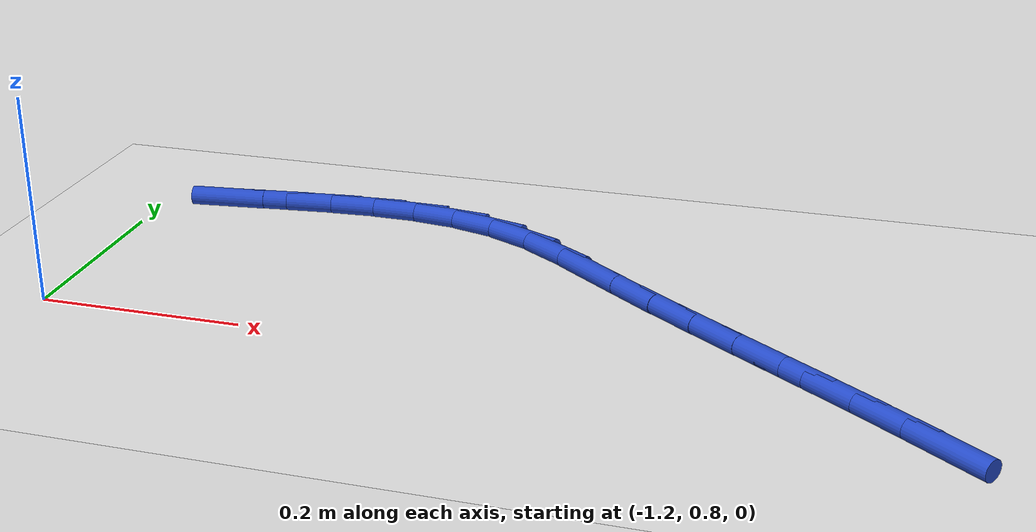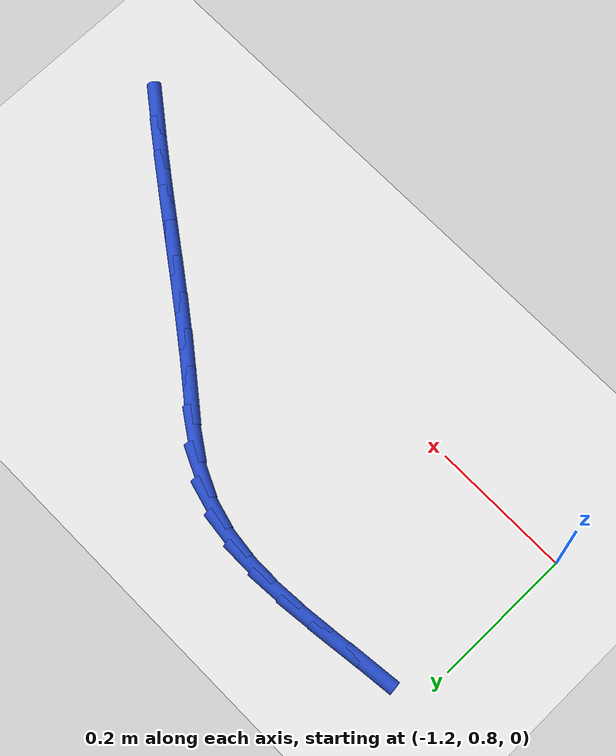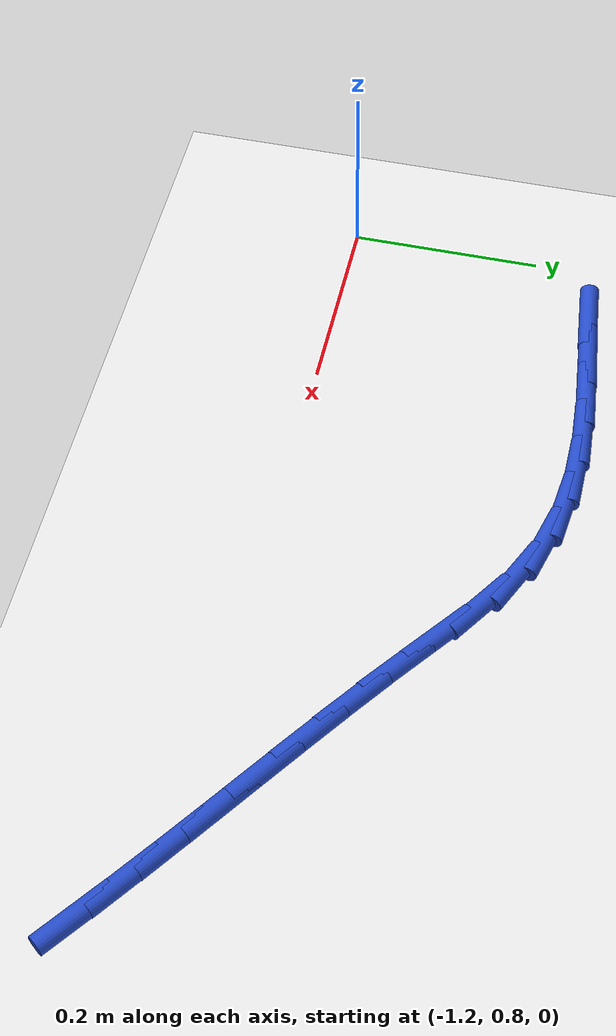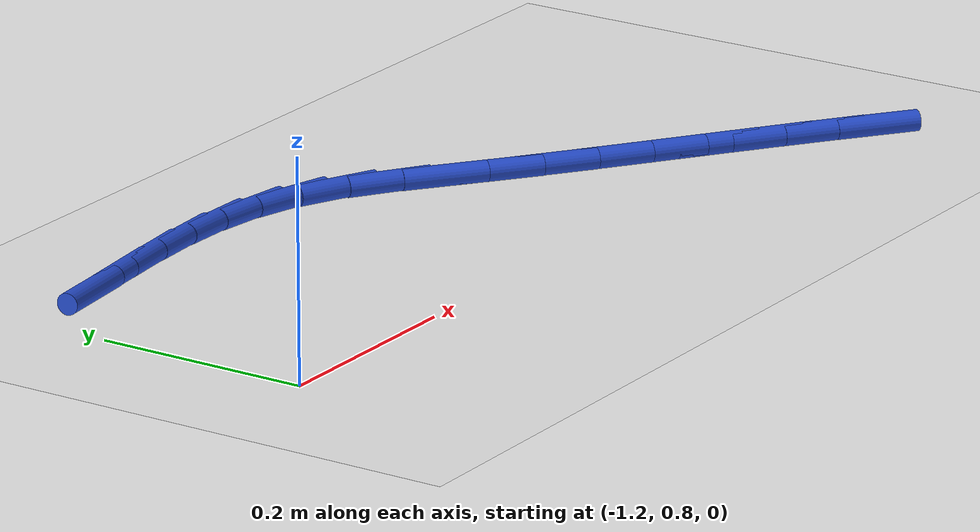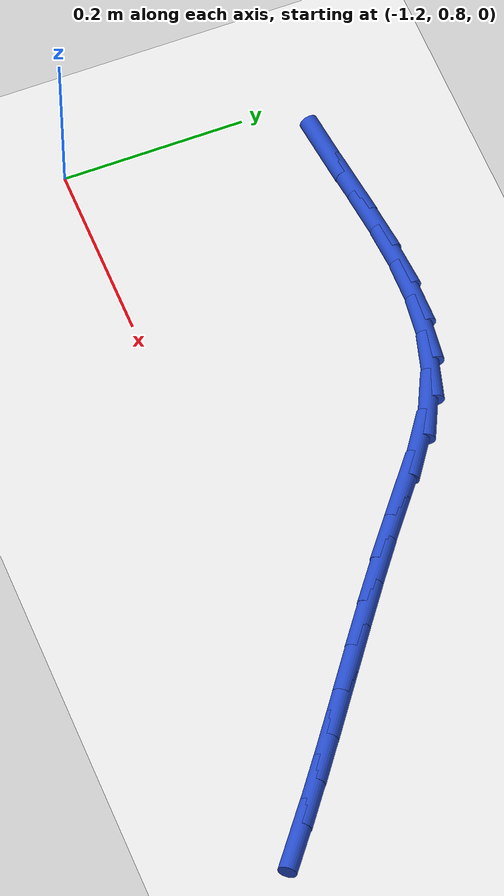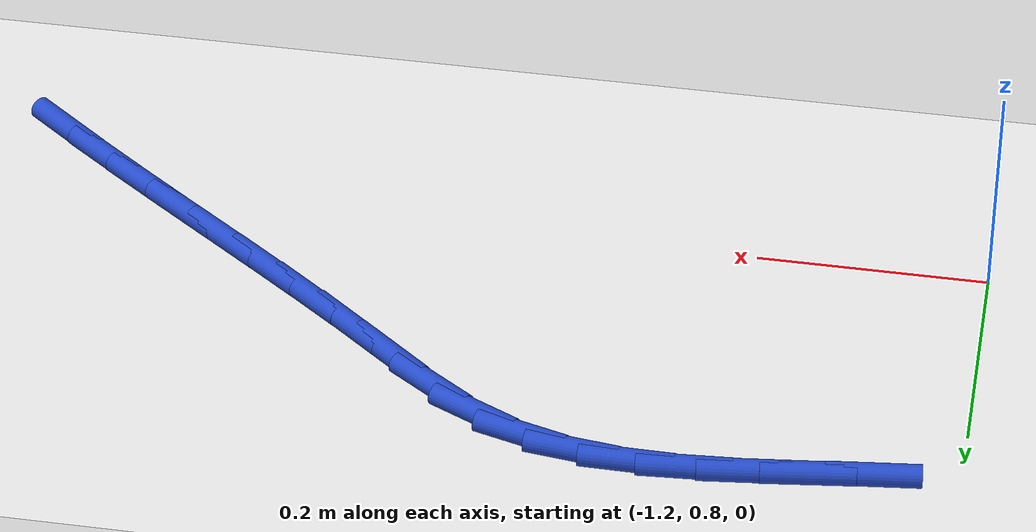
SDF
<sdf version="1.6">
 <world name="default">
  <model name="ground_plane">
   <static>1</static>
   <link name="link">
    <collision name="collision">
     <geometry><plane><normal>0 0 1</normal><size>100 100</size></plane></geometry>
     <surface><friction><ode><mu>100</mu><mu2>50</mu2></ode></friction></surface>
    </collision>
    <visual name="visual">
     <cast_shadows>0</cast_shadows>
     <geometry><plane><normal>0 0 1</normal><size>100 100</size></plane></geometry>
     <material>
      <script><uri>file://media/materials/scripts/gazebo.material</uri><name>Gazebo/WhiteGlow</name></script>
     </material>
    </visual>
   </link>
  </model>
  <model name="line">
   <link name="link_17">
    <pose>-0.37418684795999163 0.7340761775076537 0.01 0 1.57 -0.6552881118612386</pose>
    <collision name="collision">
     <geometry><cylinder><radius>0.01</radius><length>0.08</length></cylinder></geometry>
    </collision>
    <visual name="visual">
     <material>
      <script><name>Gazebo/Blue</name><uri>file://media/materials/scripts/gazebo.material</uri></script>
     </material>
     <geometry><cylinder><radius>0.01</radius><length>0.08</length></cylinder></geometry>
    </visual>
   </link>
   <link name="link_18">
    <pose>-0.4151045970676317 0.7655248362634419 0.01 0 1.57 -0.6391896097318547</pose>
    <collision name="collision">
     <geometry><cylinder><radius>0.01</radius><length>0.08</length></cylinder></geometry>
    </collision>
    <visual name="visual">
     <material>
      <script><name>Gazebo/Blue</name><uri>file://media/materials/scripts/gazebo.material</uri></script>
     </material>
     <geometry><cylinder><radius>0.01</radius><length>0.08</length></cylinder></geometry>
    </visual>
   </link>
   <link name="link_19">
    <pose>-0.4568073008976322 0.7965218286047822 0.01 0 1.57 -0.6290031770769404</pose>
    <collision name="collision">
     <geometry><cylinder><radius>0.01</radius><length>0.08</length></cylinder></geometry>
    </collision>
    <visual name="visual">
     <material>
      <script><name>Gazebo/Blue</name><uri>file://media/materials/scripts/gazebo.material</uri></script>
     </material>
     <geometry><cylinder><radius>0.01</radius><length>0.08</length></cylinder></geometry>
    </visual>
   </link>
   <link name="link_20">
    <pose>-0.4990520215523381 0.8272586266876789 0.01 0 1.57 -0.6245884747594281</pose>
    <collision name="collision">
     <geometry><cylinder><radius>0.01</radius><length>0.08</length></cylinder></geometry>
    </collision>
    <visual name="visual">
     <material>
      <script><name>Gazebo/Blue</name><uri>file://media/materials/scripts/gazebo.material</uri></script>
     </material>
     <geometry><cylinder><radius>0.01</radius><length>0.08</length></cylinder></geometry>
    </visual>
   </link>
   <link name="link_21">
    <pose>-0.5415958211340943 0.8579267026681368 0.01 0 1.57 -0.6258583143683455</pose>
    <collision name="collision">
     <geometry><cylinder><radius>0.01</radius><length>0.08</length></cylinder></geometry>
    </collision>
    <visual name="visual">
     <material>
      <script><name>Gazebo/Blue</name><uri>file://media/materials/scripts/gazebo.material</uri></script>
     </material>
     <geometry><cylinder><radius>0.01</radius><length>0.08</length></cylinder></geometry>
    </visual>
   </link>
   <link name="link_22">
    <pose>-0.5841957617452458 0.8887175287021603 0.01 0 1.57 -0.6327806665517949</pose>
    <collision name="collision">
     <geometry><cylinder><radius>0.01</radius><length>0.08</length></cylinder></geometry>
    </collision>
    <visual name="visual">
     <material>
      <script><name>Gazebo/Blue</name><uri>file://media/materials/scripts/gazebo.material</uri></script>
     </material>
     <geometry><cylinder><radius>0.01</radius><length>0.08</length></cylinder></geometry>
    </visual>
   </link>
   <link name="link_23">
    <pose>-0.6266089054881376 0.9198225769457542 0.01 0 1.57 -0.6453763254640165</pose>
    <collision name="collision">
     <geometry><cylinder><radius>0.01</radius><length>0.08</length></cylinder></geometry>
    </collision>
    <visual name="visual">
     <material>
      <script><name>Gazebo/Blue</name><uri>file://media/materials/scripts/gazebo.material</uri></script>
     </material>
     <geometry><cylinder><radius>0.01</radius><length>0.08</length></cylinder></geometry>
    </visual>
   </link>
   <link name="link_24">
    <pose>-0.6685923144651147 0.9514333195549228 0.01 0 1.57 -0.6636748674826974</pose>
    <collision name="collision">
     <geometry><cylinder><radius>0.01</radius><length>0.08</length></cylinder></geometry>
    </collision>
    <visual name="visual">
     <material>
      <script><name>Gazebo/Blue</name><uri>file://media/materials/scripts/gazebo.material</uri></script>
     </material>
     <geometry><cylinder><radius>0.01</radius><length>0.08</length></cylinder></geometry>
    </visual>
   </link>
   <link name="link_25">
    <pose>-0.7099036691464841 0.9837392188281807 0.01 0 1.57 -0.6671351583942463</pose>
    <collision name="collision">
     <geometry><cylinder><radius>0.01</radius><length>0.08</length></cylinder></geometry>
    </collision>
    <visual name="visual">
     <material>
      <script><name>Gazebo/Blue</name><uri>file://media/materials/scripts/gazebo.material</uri></script>
     </material>
     <geometry><cylinder><radius>0.01</radius><length>0.08</length></cylinder></geometry>
    </visual>
   </link>
   <link name="link_26">
    <pose>-0.7506408762146539 1.0158239129545878 0.01 0 1.57 -0.5974731530288941</pose>
    <collision name="collision">
     <geometry><cylinder><radius>0.01</radius><length>0.08</length></cylinder></geometry>
    </collision>
    <visual name="visual">
     <material>
      <script><name>Gazebo/Blue</name><uri>file://media/materials/scripts/gazebo.material</uri></script>
     </material>
     <geometry><cylinder><radius>0.01</radius><length>0.08</length></cylinder></geometry>
    </visual>
   </link>
   <link name="link_27">
    <pose>-0.7918055526931449 1.0438337453245659 0.01 0 1.57 -0.44142695521278325</pose>
    <collision name="collision">
     <geometry><cylinder><radius>0.01</radius><length>0.08</length></cylinder></geometry>
    </collision>
    <visual name="visual">
     <material>
      <script><name>Gazebo/Blue</name><uri>file://media/materials/scripts/gazebo.material</uri></script>
     </material>
     <geometry><cylinder><radius>0.01</radius><length>0.08</length></cylinder></geometry>
    </visual>
   </link>
   <link name="link_28">
    <pose>-0.8344394997565895 1.0639793476541815 0.01 0 1.57 -0.26747660866811307</pose>
    <collision name="collision">
     <geometry><cylinder><radius>0.01</radius><length>0.08</length></cylinder></geometry>
    </collision>
    <visual name="visual">
     <material>
      <script><name>Gazebo/Blue</name><uri>file://media/materials/scripts/gazebo.material</uri></script>
     </material>
     <geometry><cylinder><radius>0.01</radius><length>0.08</length></cylinder></geometry>
    </visual>
   </link>
   <link name="link_29">
    <pose>-0.8788560352390451 1.076151404071915 0.01 0 1.57 -0.12075955600595661</pose>
    <collision name="collision">
     <geometry><cylinder><radius>0.01</radius><length>0.08</length></cylinder></geometry>
    </collision>
    <visual name="visual">
     <material>
      <script><name>Gazebo/Blue</name><uri>file://media/materials/scripts/gazebo.material</uri></script>
     </material>
     <geometry><cylinder><radius>0.01</radius><length>0.08</length></cylinder></geometry>
    </visual>
   </link>
   <link name="link_30">
    <pose>-0.9250678609733516 1.0817592094676391 0.01 0 1.57 -0.00952965241427522</pose>
    <collision name="collision">
     <geometry><cylinder><radius>0.01</radius><length>0.08</length></cylinder></geometry>
    </collision>
    <visual name="visual">
     <material>
      <script><name>Gazebo/Blue</name><uri>file://media/materials/scripts/gazebo.material</uri></script>
     </material>
     <geometry><cylinder><radius>0.01</radius><length>0.08</length></cylinder></geometry>
    </visual>
   </link>
   <link name="link_31">
    <pose>-0.9730867349907076 1.082216826499153 0.01 0 1.57 0.06568908597823814</pose>
    <collision name="collision">
     <geometry><cylinder><radius>0.01</radius><length>0.08</length></cylinder></geometry>
    </collision>
    <visual name="visual">
     <material>
      <script><name>Gazebo/Blue</name><uri>file://media/materials/scripts/gazebo.material</uri></script>
     </material>
     <geometry><cylinder><radius>0.01</radius><length>0.08</length></cylinder></geometry>
    </visual>
   </link>
   <link name="link_32">
    <pose>-1.022924415322312 1.078938317824256 0.01 0 1.57 0.1079732932506022</pose>
    <collision name="collision">
     <geometry><cylinder><radius>0.01</radius><length>0.08</length></cylinder></geometry>
    </collision>
    <visual name="visual">
     <material>
      <script><name>Gazebo/Blue</name><uri>file://media/materials/scripts/gazebo.material</uri></script>
     </material>
     <geometry><cylinder><radius>0.01</radius><length>0.08</length></cylinder></geometry>
    </visual>
   </link>
   <link name="link_33">
    <pose>-1.0745926599993632 1.073337746100746 0.01 0 1.57 0.12103698324139515</pose>
    <collision name="collision">
     <geometry><cylinder><radius>0.01</radius><length>0.08</length></cylinder></geometry>
    </collision>
    <visual name="visual">
     <material>
      <script><name>Gazebo/Blue</name><uri>file://media/materials/scripts/gazebo.material</uri></script>
     </material>
     <geometry><cylinder><radius>0.01</radius><length>0.08</length></cylinder></geometry>
    </visual>
   </link>
   <link name="link_34">
    <pose>-1.1281032270530598 1.0668291739864222 0.01 0 1.57 0.10799591371574249</pose>
    <collision name="collision">
     <geometry><cylinder><radius>0.01</radius><length>0.08</length></cylinder></geometry>
    </collision>
    <visual name="visual">
     <material>
      <script><name>Gazebo/Blue</name><uri>file://media/materials/scripts/gazebo.material</uri></script>
     </material>
     <geometry><cylinder><radius>0.01</radius><length>0.08</length></cylinder></geometry>
    </visual>
   </link>
  </model>
 </world>
</sdf>
